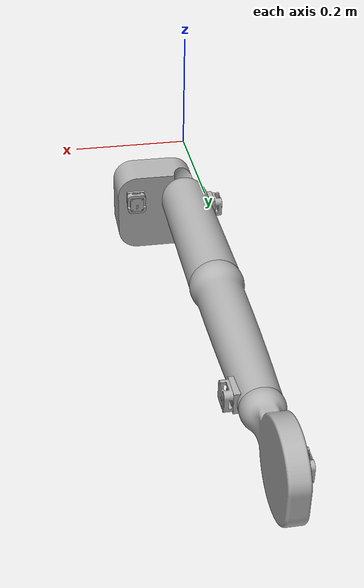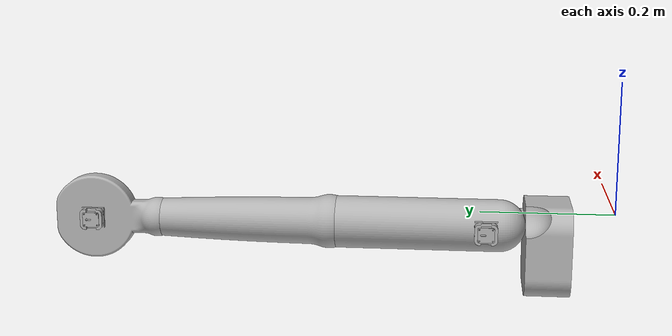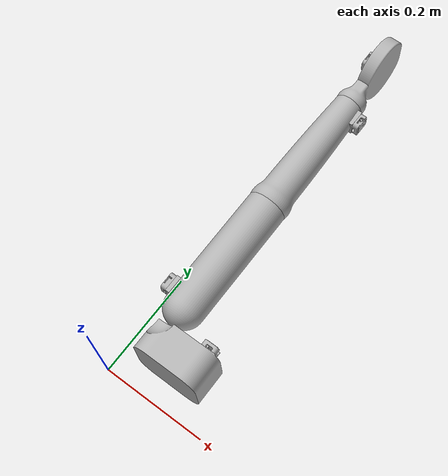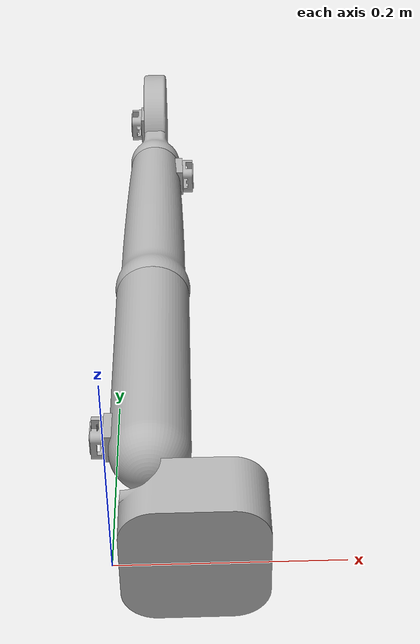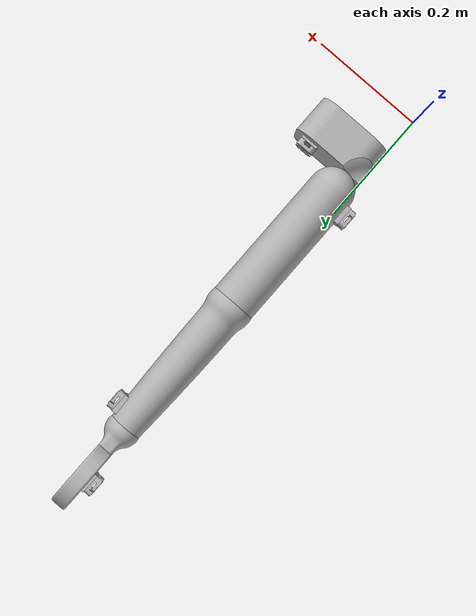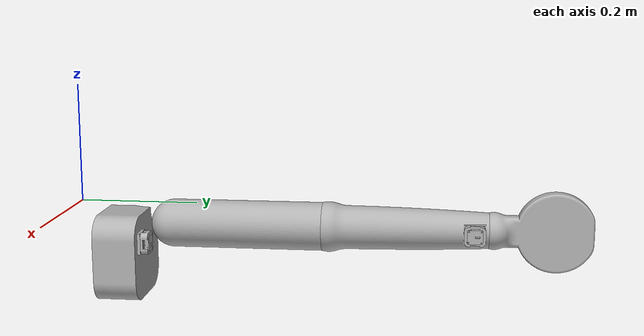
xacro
<?xml version="1.0" ?>
<robot name="teleoparm" xmlns:xacro="http://www.ros.org/wiki/xacro">

<xacro:include filename="$(find teleoparm_description)/urdf/materials.xacro" />
<xacro:include filename="$(find teleoparm_description)/urdf/teleoparm.trans" />
<xacro:include filename="$(find teleoparm_description)/urdf/teleoparm.gazebo" />
<link name="base_link">
  <inertial>
    <origin xyz="0.07113361231916689 0.09476516315892339 -0.07084274048346811" rpy="0 0 0"/>
    <mass value="10.050088451865955"/>
    <inertia ixx="0.018966" iyy="0.029715" izz="0.018993" ixy="-0.000273" iyz="0.000163" ixz="-0.00055"/>
  </inertial>
  <visual>
    <origin xyz="0 0 0" rpy="0 0 0"/>
    <geometry>
      <mesh filename="package://teleoparm_description/meshes/base_link.stl" scale="0.001 0.001 0.001"/>
    </geometry>
    <material name="silver"/>
  </visual>
  <collision>
    <origin xyz="0 0 0" rpy="0 0 0"/>
    <geometry>
      <mesh filename="package://teleoparm_description/meshes/base_link.stl" scale="0.001 0.001 0.001"/>
    </geometry>
  </collision>
</link>

<link name="imumount_v2_1">
  <inertial>
    <origin xyz="3.339349192721386e-07 0.0069197369262744 -3.342204968129203e-07" rpy="0 0 0"/>
    <mass value="0.04523287359850269"/>
    <inertia ixx="7e-06" iyy="1e-05" izz="5e-06" ixy="-0.0" iyz="0.0" ixz="-0.0"/>
  </inertial>
  <visual>
    <origin xyz="-0.109 -0.135 0.0425" rpy="0 0 0"/>
    <geometry>
      <mesh filename="package://teleoparm_description/meshes/imumount_v2_1.stl" scale="0.001 0.001 0.001"/>
    </geometry>
    <material name="silver"/>
  </visual>
  <collision>
    <origin xyz="-0.109 -0.135 0.0425" rpy="0 0 0"/>
    <geometry>
      <mesh filename="package://teleoparm_description/meshes/imumount_v2_1.stl" scale="0.001 0.001 0.001"/>
    </geometry>
  </collision>
</link>

<link name="imumount_v2__1__1">
  <inertial>
    <origin xyz="-0.006919465678812485 5.86783745454289e-07 3.2970043303132135e-08" rpy="0 0 0"/>
    <mass value="0.04523287359850269"/>
    <inertia ixx="1e-05" iyy="5e-06" izz="7e-06" ixy="0.0" iyz="0.0" ixz="0.0"/>
  </inertial>
  <visual>
    <origin xyz="0.016716 -0.190488 0.028268" rpy="0 0 0"/>
    <geometry>
      <mesh filename="package://teleoparm_description/meshes/imumount_v2__1__1.stl" scale="0.001 0.001 0.001"/>
    </geometry>
    <material name="silver"/>
  </visual>
  <collision>
    <origin xyz="0.016716 -0.190488 0.028268" rpy="0 0 0"/>
    <geometry>
      <mesh filename="package://teleoparm_description/meshes/imumount_v2__1__1.stl" scale="0.001 0.001 0.001"/>
    </geometry>
  </collision>
</link>

<link name="imumount_v2__2__1">
  <inertial>
    <origin xyz="0.006919508173724609 7.07822378265277e-07 -5.857178980994693e-07" rpy="0 0 0"/>
    <mass value="0.0452328735985027"/>
    <inertia ixx="1e-05" iyy="5e-06" izz="7e-06" ixy="-0.0" iyz="-0.0" ixz="0.0"/>
  </inertial>
  <visual>
    <origin xyz="-0.062697 -0.668541 0.028296" rpy="0 0 0"/>
    <geometry>
      <mesh filename="package://teleoparm_description/meshes/imumount_v2__2__1.stl" scale="0.001 0.001 0.001"/>
    </geometry>
    <material name="silver"/>
  </visual>
  <collision>
    <origin xyz="-0.062697 -0.668541 0.028296" rpy="0 0 0"/>
    <geometry>
      <mesh filename="package://teleoparm_description/meshes/imumount_v2__2__1.stl" scale="0.001 0.001 0.001"/>
    </geometry>
  </collision>
</link>

<link name="imumount_v2__3__1">
  <inertial>
    <origin xyz="-0.00691946567881243 3.342204966116924e-07 5.626874578501528e-07" rpy="0 0 0"/>
    <mass value="0.0452328735985027"/>
    <inertia ixx="1e-05" iyy="5e-06" izz="7e-06" ixy="0.0" iyz="0.0" ixz="0.0"/>
  </inertial>
  <visual>
    <origin xyz="-0.009284 -0.8 0.027972" rpy="0 0 0"/>
    <geometry>
      <mesh filename="package://teleoparm_description/meshes/imumount_v2__3__1.stl" scale="0.001 0.001 0.001"/>
    </geometry>
    <material name="silver"/>
  </visual>
  <collision>
    <origin xyz="-0.009284 -0.8 0.027972" rpy="0 0 0"/>
    <geometry>
      <mesh filename="package://teleoparm_description/meshes/imumount_v2__3__1.stl" scale="0.001 0.001 0.001"/>
    </geometry>
  </collision>
</link>

<link name="chestimu_1">
  <inertial>
    <origin xyz="1.545714944928278e-11 0.0006349999999999967 0.00018322645468379917" rpy="0 0 0"/>
    <mass value="0.005312650268367757"/>
    <inertia ixx="0.0" iyy="1e-06" izz="0.0" ixy="0.0" iyz="0.0" ixz="0.0"/>
  </inertial>
  <visual>
    <origin xyz="-0.109 -0.147 0.0425" rpy="0 0 0"/>
    <geometry>
      <mesh filename="package://teleoparm_description/meshes/chestimu_1.stl" scale="0.001 0.001 0.001"/>
    </geometry>
    <material name="silver"/>
  </visual>
  <collision>
    <origin xyz="-0.109 -0.147 0.0425" rpy="0 0 0"/>
    <geometry>
      <mesh filename="package://teleoparm_description/meshes/chestimu_1.stl" scale="0.001 0.001 0.001"/>
    </geometry>
  </collision>
</link>

<link name="armimu_1">
  <inertial>
    <origin xyz="-0.000634728752538085 -0.00018297429674676846 -3.0058463838106286e-07" rpy="0 0 0"/>
    <mass value="0.005312650268367757"/>
    <inertia ixx="1e-06" iyy="0.0" izz="0.0" ixy="-0.0" iyz="-0.0" ixz="-0.0"/>
  </inertial>
  <visual>
    <origin xyz="0.028716 -0.190488 0.028268" rpy="0 0 0"/>
    <geometry>
      <mesh filename="package://teleoparm_description/meshes/armimu_1.stl" scale="0.001 0.001 0.001"/>
    </geometry>
    <material name="silver"/>
  </visual>
  <collision>
    <origin xyz="0.028716 -0.190488 0.028268" rpy="0 0 0"/>
    <geometry>
      <mesh filename="package://teleoparm_description/meshes/armimu_1.stl" scale="0.001 0.001 0.001"/>
    </geometry>
  </collision>
</link>

<link name="elbowimu_1">
  <inertial>
    <origin xyz="0.0006347712474503303 -0.00018285325811384645 -2.5216321629384364e-07" rpy="0 0 0"/>
    <mass value="0.005312650268367757"/>
    <inertia ixx="1e-06" iyy="0.0" izz="0.0" ixy="0.0" iyz="0.0" ixz="-0.0"/>
  </inertial>
  <visual>
    <origin xyz="-0.074697 -0.668541 0.028296" rpy="0 0 0"/>
    <geometry>
      <mesh filename="package://teleoparm_description/meshes/elbowimu_1.stl" scale="0.001 0.001 0.001"/>
    </geometry>
    <material name="silver"/>
  </visual>
  <collision>
    <origin xyz="-0.074697 -0.668541 0.028296" rpy="0 0 0"/>
    <geometry>
      <mesh filename="package://teleoparm_description/meshes/elbowimu_1.stl" scale="0.001 0.001 0.001"/>
    </geometry>
  </collision>
</link>

<link name="wristimu_1">
  <inertial>
    <origin xyz="-0.0006347287525380269 -0.00018322645468393794 2.287679957552191e-07" rpy="0 0 0"/>
    <mass value="0.005312650268367757"/>
    <inertia ixx="1e-06" iyy="0.0" izz="0.0" ixy="-0.0" iyz="-0.0" ixz="0.0"/>
  </inertial>
  <visual>
    <origin xyz="0.002716 -0.8 0.027972" rpy="0 0 0"/>
    <geometry>
      <mesh filename="package://teleoparm_description/meshes/wristimu_1.stl" scale="0.001 0.001 0.001"/>
    </geometry>
    <material name="silver"/>
  </visual>
  <collision>
    <origin xyz="0.002716 -0.8 0.027972" rpy="0 0 0"/>
    <geometry>
      <mesh filename="package://teleoparm_description/meshes/wristimu_1.stl" scale="0.001 0.001 0.001"/>
    </geometry>
  </collision>
</link>

<link name="arm_1">
  <inertial>
    <origin xyz="-0.00021910399897615354 0.14173858615056883 -7.019503666175209e-08" rpy="0 0 0"/>
    <mass value="10.223679855950772"/>
    <inertia ixx="0.061527" iyy="0.008217" izz="0.061616" ixy="-0.000182" iyz="-0.0" ixz="0.0"/>
  </inertial>
  <visual>
    <origin xyz="-0.028284 -0.13 0.028284" rpy="0 0 0"/>
    <geometry>
      <mesh filename="package://teleoparm_description/meshes/arm_1.stl" scale="0.001 0.001 0.001"/>
    </geometry>
    <material name="silver"/>
  </visual>
  <collision>
    <origin xyz="-0.028284 -0.13 0.028284" rpy="0 0 0"/>
    <geometry>
      <mesh filename="package://teleoparm_description/meshes/arm_1.stl" scale="0.001 0.001 0.001"/>
    </geometry>
  </collision>
</link>

<link name="elbow_1">
  <inertial>
    <origin xyz="0.00021789727738510956 0.13945610053009078 -0.0001265095280190906" rpy="0 0 0"/>
    <mass value="8.504893880781394"/>
    <inertia ixx="0.058727" iyy="0.005291" izz="0.058771" ixy="-0.000266" iyz="0.0" ixz="0.0"/>
  </inertial>
  <visual>
    <origin xyz="-0.028284 -0.388754 0.028158" rpy="0 0 0"/>
    <geometry>
      <mesh filename="package://teleoparm_description/meshes/elbow_1.stl" scale="0.001 0.001 0.001"/>
    </geometry>
    <material name="silver"/>
  </visual>
  <collision>
    <origin xyz="-0.028284 -0.388754 0.028158" rpy="0 0 0"/>
    <geometry>
      <mesh filename="package://teleoparm_description/meshes/elbow_1.stl" scale="0.001 0.001 0.001"/>
    </geometry>
  </collision>
</link>

<link name="wrist_1">
  <inertial>
    <origin xyz="-0.00018197406093689236 0.10410271217210565 3.1790700250715342e-06" rpy="0 0 0"/>
    <mass value="3.9800296871313745"/>
    <inertia ixx="0.013577" iyy="0.003664" izz="0.010677" ixy="1.9e-05" iyz="-0.0" ixz="0.0"/>
  </inertial>
  <visual>
    <origin xyz="-0.028284 -0.6695 0.028284" rpy="0 0 0"/>
    <geometry>
      <mesh filename="package://teleoparm_description/meshes/wrist_1.stl" scale="0.001 0.001 0.001"/>
    </geometry>
    <material name="silver"/>
  </visual>
  <collision>
    <origin xyz="-0.028284 -0.6695 0.028284" rpy="0 0 0"/>
    <geometry>
      <mesh filename="package://teleoparm_description/meshes/wrist_1.stl" scale="0.001 0.001 0.001"/>
    </geometry>
  </collision>
</link>

<joint name="Rigid 6" type="fixed">
  <origin xyz="0.109 0.135 -0.0425" rpy="0 0 0"/>
  <parent link="base_link"/>
  <child link="imumount_v2_1"/>
</joint>

<joint name="Rigid 7" type="fixed">
  <origin xyz="-0.045 0.060488 1.6e-05" rpy="0 0 0"/>
  <parent link="arm_1"/>
  <child link="imumount_v2__1__1"/>
</joint>

<joint name="Rigid 8" type="fixed">
  <origin xyz="0.034413 0.279787 -0.000138" rpy="0 0 0"/>
  <parent link="elbow_1"/>
  <child link="imumount_v2__2__1"/>
</joint>

<joint name="Rigid 9" type="fixed">
  <origin xyz="-0.019 0.1305 0.000312" rpy="0 0 0"/>
  <parent link="wrist_1"/>
  <child link="imumount_v2__3__1"/>
</joint>

<joint name="chestimu" type="fixed">
  <origin xyz="0.0 0.012 0.0" rpy="0 0 0"/>
  <parent link="imumount_v2_1"/>
  <child link="chestimu_1"/>
</joint>

<joint name="armimu" type="fixed">
  <origin xyz="-0.012 0.0 0.0" rpy="0 0 0"/>
  <parent link="imumount_v2__1__1"/>
  <child link="armimu_1"/>
</joint>

<joint name="elbowimu" type="fixed">
  <origin xyz="0.012 0.0 0.0" rpy="0 0 0"/>
  <parent link="imumount_v2__2__1"/>
  <child link="elbowimu_1"/>
</joint>

<joint name="wristimu" type="fixed">
  <origin xyz="-0.012 0.0 0.0" rpy="0 0 0"/>
  <parent link="imumount_v2__3__1"/>
  <child link="wristimu_1"/>
</joint>

<!-- Ball joint for shoulder: 3 DOF -->
<link name="shldr_virtual_1">
  <inertial>
    <mass value="0.001"/>
    <inertia ixx="0.0001" ixy="0" ixz="0" iyy="0.0001" iyz="0" izz="0.0001"/>
  </inertial>
</link>

<link name="shldr_virtual_2">
  <inertial>
    <mass value="0.001"/>
    <inertia ixx="0.0001" ixy="0" ixz="0" iyy="0.0001" iyz="0" izz="0.0001"/>
  </inertial>
</link>

<joint name="shldrevolute_roll" type="continuous">
  <origin xyz="0.028284 0.13 -0.028284" rpy="0 0 0"/>
  <parent link="base_link"/>
  <child link="shldr_virtual_1"/>
  <axis xyz="0 1 0"/>
</joint>

<joint name="shldrevolute_pitch" type="continuous">
  <origin xyz="0 0 0" rpy="0 0 0"/>
  <parent link="shldr_virtual_1"/>
  <child link="shldr_virtual_2"/>
  <axis xyz="1 0 0"/>
</joint>

<joint name="shldrevolute_yaw" type="continuous">
  <origin xyz="0 0 0" rpy="0 0 0"/>
  <parent link="shldr_virtual_2"/>
  <child link="arm_1"/>
  <axis xyz="0 0 1"/>
</joint>

<!-- Ball joint for elbow: 3 DOF -->
<link name="elbow_virtual_1">
  <inertial>
    <mass value="0.001"/>
    <inertia ixx="0.0001" ixy="0" ixz="0" iyy="0.0001" iyz="0" izz="0.0001"/>
  </inertial>
</link>

<link name="elbow_virtual_2">
  <inertial>
    <mass value="0.001"/>
    <inertia ixx="0.0001" ixy="0" ixz="0" iyy="0.0001" iyz="0" izz="0.0001"/>
  </inertial>
</link>

<joint name="elbowrevolute_roll" type="continuous">
  <origin xyz="0.0 0.258754 0.000126" rpy="0 0 0"/>
  <parent link="arm_1"/>
  <child link="elbow_virtual_1"/>
  <axis xyz="0 1 0"/>
</joint>

<joint name="elbowrevolute_pitch" type="continuous">
  <origin xyz="0 0 0" rpy="0 0 0"/>
  <parent link="elbow_virtual_1"/>
  <child link="elbow_virtual_2"/>
  <axis xyz="1 0 0"/>
</joint>

<joint name="elbowrevolute_yaw" type="continuous">
  <origin xyz="0 0 0" rpy="0 0 0"/>
  <parent link="elbow_virtual_2"/>
  <child link="elbow_1"/>
  <axis xyz="0 0 1"/>
</joint>

<!-- Ball joint for wrist: 3 DOF -->
<link name="wrist_virtual_1">
  <inertial>
    <mass value="0.001"/>
    <inertia ixx="0.0001" ixy="0" ixz="0" iyy="0.0001" iyz="0" izz="0.0001"/>
  </inertial>
</link>

<link name="wrist_virtual_2">
  <inertial>
    <mass value="0.001"/>
    <inertia ixx="0.0001" ixy="0" ixz="0" iyy="0.0001" iyz="0" izz="0.0001"/>
  </inertial>
</link>

<joint name="wristrevolute_roll" type="continuous">
  <origin xyz="0.0 0.280746 -0.000126" rpy="0 0 0"/>
  <parent link="elbow_1"/>
  <child link="wrist_virtual_1"/>
  <axis xyz="0 1 0"/>
</joint>

<joint name="wristrevolute_pitch" type="continuous">
  <origin xyz="0 0 0" rpy="0 0 0"/>
  <parent link="wrist_virtual_1"/>
  <child link="wrist_virtual_2"/>
  <axis xyz="1 0 0"/>
</joint>

<joint name="wristrevolute_yaw" type="continuous">
  <origin xyz="0 0 0" rpy="0 0 0"/>
  <parent link="wrist_virtual_2"/>
  <child link="wrist_1"/>
  <axis xyz="0 0 1"/>
</joint>

</robot>

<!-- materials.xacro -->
<robot name="teleoparm" xmlns:xacro="http://www.ros.org/wiki/xacro" >

<material name="silver">
  <color rgba="0.700 0.700 0.700 1.000"/>
</material>

</robot>

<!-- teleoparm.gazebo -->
<robot name="teleoparm" xmlns:xacro="http://www.ros.org/wiki/xacro" >

<xacro:property name="body_color" value="Gazebo/Silver" />

<gazebo>
  <plugin name="control" filename="libgazebo_ros_control.so"/>
</gazebo>
<gazebo reference="base_link">
  <material>${body_color}</material>
  <mu1>0.2</mu1>
  <mu2>0.2</mu2>
  <self_collide>true</self_collide>
  <gravity>true</gravity>
</gazebo>

<gazebo reference="arm_1">
  <material>${body_color}</material>
  <mu1>0.2</mu1>
  <mu2>0.2</mu2>
  <self_collide>true</self_collide>
</gazebo>

<gazebo reference="elbow_1">
  <material>${body_color}</material>
  <mu1>0.2</mu1>
  <mu2>0.2</mu2>
  <self_collide>true</self_collide>
</gazebo>

<gazebo reference="wrist_1">
  <material>${body_color}</material>
  <mu1>0.2</mu1>
  <mu2>0.2</mu2>
  <self_collide>true</self_collide>
</gazebo>

<gazebo reference="imumount_v2_1">
  <material>${body_color}</material>
  <mu1>0.2</mu1>
  <mu2>0.2</mu2>
  <self_collide>true</self_collide>
</gazebo>

<gazebo reference="imumount_v2__1__1">
  <material>${body_color}</material>
  <mu1>0.2</mu1>
  <mu2>0.2</mu2>
  <self_collide>true</self_collide>
</gazebo>

<gazebo reference="imumount_v2__2__1">
  <material>${body_color}</material>
  <mu1>0.2</mu1>
  <mu2>0.2</mu2>
  <self_collide>true</self_collide>
</gazebo>

<gazebo reference="imumount_v2__3__1">
  <material>${body_color}</material>
  <mu1>0.2</mu1>
  <mu2>0.2</mu2>
  <self_collide>true</self_collide>
</gazebo>

<gazebo reference="chestimu_1">
  <material>${body_color}</material>
  <mu1>0.2</mu1>
  <mu2>0.2</mu2>
  <self_collide>true</self_collide>
</gazebo>

<gazebo reference="armimu_1">
  <material>${body_color}</material>
  <mu1>0.2</mu1>
  <mu2>0.2</mu2>
  <self_collide>true</self_collide>
</gazebo>

<gazebo reference="elbowimu_1">
  <material>${body_color}</material>
  <mu1>0.2</mu1>
  <mu2>0.2</mu2>
  <self_collide>true</self_collide>
</gazebo>

<gazebo reference="wristimu_1">
  <material>${body_color}</material>
  <mu1>0.2</mu1>
  <mu2>0.2</mu2>
  <self_collide>true</self_collide>
</gazebo>

</robot>
